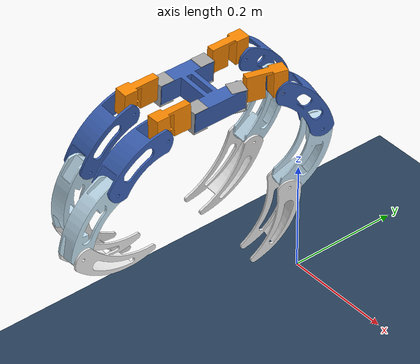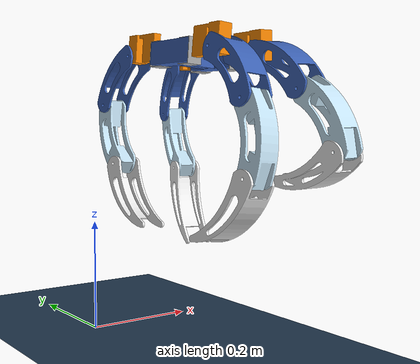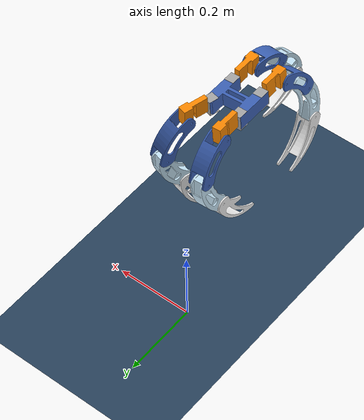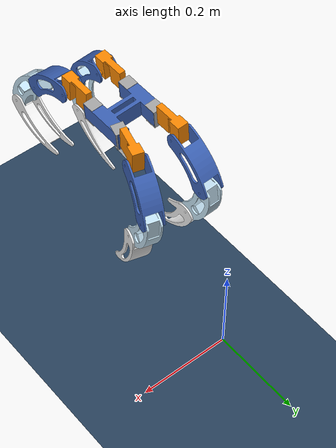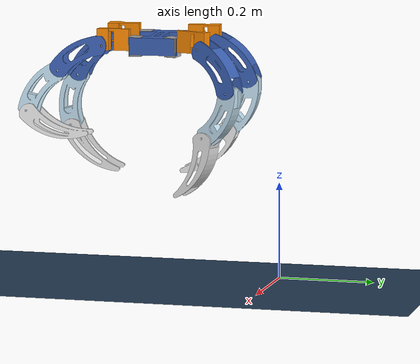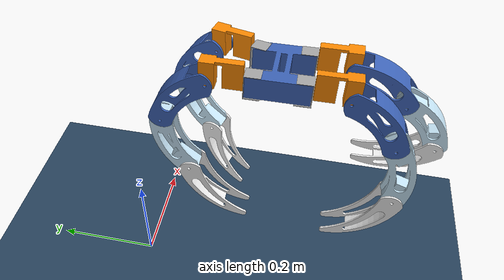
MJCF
<mujoco model="XiaoTianRobot">
  <option viscosity="0.1" integrator="RK4" timestep="0.001" gravity="0 0 -9.81" />
  <include file="mjmodel.xml" />

  <statistic center="0 0 0.3" extent="1.2" />

  <visual>
    <headlight diffuse="0.6 0.6 0.6" ambient="0.3 0.3 0.3" specular="0 0 0" />
    <rgba haze="0.15 0.25 0.35 1" />
    <global azimuth="120" elevation="-20" />
  </visual>

  <asset>
    <texture type="skybox" builtin="gradient" rgb1="0.3 0.5 0.7" rgb2="0 0 0" width="512"
      height="3072" />
    <texture type="2d" name="groundplane" builtin="checker" mark="edge" rgb1="0.2 0.3 0.4"
      rgb2="0.1 0.2 0.3" markrgb="0.8 0.8 0.8" width="300" height="300" />
    <material name="groundplane" texture="groundplane" texuniform="true" texrepeat="5 5"
      reflectance="0.2" />
  </asset>

  <worldbody>
    <light pos="0 0 1.5" dir="0 0 -1" directional="true" />
    <geom name="floor" size="0 0 0.05" type="plane" material="groundplane" />
  </worldbody>

</mujoco>

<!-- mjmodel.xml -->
<mujoco model="onshape">
  <compiler angle="radian" autolimits="true" />
  <size />
  <default />
  <asset>
    <mesh name="part_1" file="part_1.stl" />
    <mesh name="arm5" file="arm5.stl" />
    <mesh name="arm4" file="arm4.stl" />
    <mesh name="arm3" file="arm3.stl" />
    <mesh name="arm2" file="arm2.stl" />
    <mesh name="arm1" file="arm1.stl" />
  </asset>
  <worldbody>
    <body name="part_1" pos="0 0 0">
      <freejoint />
      <inertial pos="0.0499504 -0.243547 0.490316" quat="0 0.732218 0 0.68107" mass="1.4693" diaginertia="0.00314375 0.00226565 0.00119547" />
      <geom pos="0.0486492 -0.243547 0.472363" quat="0.999346 0 0.0361667 0" type="mesh" rgba="0.231373 0.380392 0.705882 1" mesh="part_1" />
      <body name="arm5" pos="0.0113562 -0.205451 0.51116" quat="0.0255749 0.706643 -0.706645 -0.025575">
        <inertial pos="-0.00577778 0 0.019" quat="0.707107 0 0 0.707107" mass="0.0156937" diaginertia="5.35559e-06 5.06341e-06 1.92694e-06" />
        <joint name="joint_1" pos="0 0 0" axis="0 0 1" range="-1.5708 0" />
        <geom pos="0.0455 0.0205 0.019" quat="0.707105 0.707108 0 0" type="mesh" rgba="0.647059 0.647059 0.647059 1" mesh="arm5" />
        <body name="arm4" pos="-0.0145 0 0.019" quat="9.38184e-07 -0.707105 -9.38187e-07 -0.707108">
          <inertial pos="-0.0130017 0 -0.0385551" quat="0.707079 -0.0062266 -0.0062266 0.707079" mass="0.304573" diaginertia="0.000182801 0.000140279 6.25312e-05" />
          <joint name="joint_14" pos="0 0 0" axis="0 0 1" range="-3.14159 0" />
          <geom pos="0 -0.0205 0.06" quat="0.499998 -0.5 -0.5 -0.500002" type="mesh" rgba="0.972549 0.529412 0.00392157 1" mesh="arm4" />
          <body name="arm3" pos="0 -0.0165 -0.055" quat="0.697691 -0.697693 -0.115005 -0.115005">
            <inertial pos="0.0164728 0.0533065 0.0165" quat="0.684885 0.684885 -0.175878 -0.175878" mass="0.253495" diaginertia="0.000453233 0.000429282 0.000133321" />
            <joint name="joint_13" pos="0 0 0" axis="0 0 1" range="0 1.5708" />
            <geom pos="0.115 0 -0.004" type="mesh" rgba="0.231373 0.380392 0.705882 1" mesh="arm3" />
            <body name="arm2" pos="0.0516066 0.0959494 0.001" quat="1.32033e-06 0.995124 -0.0986279 -1.30859e-07">
              <inertial pos="0.0535692 -0.0124398 -0.0155" quat="0.0319414 0.706385 -0.0319414 0.706385" mass="0.582673" diaginertia="0.00114357 0.00112104 0.000135036" />
              <joint name="joint_12" pos="0 0 0" axis="0 0 1" range="-1.0472 1.0472" />
              <geom pos="0.0633934 0.0959494 0.005" quat="1.32679e-06 -1 0 0" type="mesh" rgba="0.768627 0.886275 0.952941 1" mesh="arm2" />
              <body name="arm1" pos="0.108614 -0.0100944 0.001" quat="1.26743e-06 0.955259 -0.295771 -3.92427e-07">
                <inertial pos="0.0422881 -0.0309098 0.0165" quat="0.659314 0.659314 0.255547 0.255547" mass="0.226307" diaginertia="0.00045052 0.000421982 0.000104411" />
                <joint name="joint_11" pos="0 0 0" axis="0 0 1" range="-1.0472 1.0472" />
                <geom pos="-0.0452202 -0.106044 -0.004" type="mesh" rgba="0.917647 0.917647 0.917647 1" mesh="arm1" />
              </body>
            </body>
          </body>
        </body>
      </body>
      <body name="arm5_2" pos="0.0911469 -0.205451 0.505377" quat="0.0286831 0.608749 -0.792538 -0.0220317">
        <inertial pos="-0.00577778 0 0.019" quat="0.707107 0 0 0.707107" mass="0.0156937" diaginertia="5.35559e-06 5.06341e-06 1.92694e-06" />
        <joint name="joint_2" pos="0 0 0" axis="0 0 1" range="0 1.5708" />
        <geom pos="0.0455 -0.0205 0.019" quat="0.707105 -0.707108 0 0" type="mesh" rgba="0.647059 0.647059 0.647059 1" mesh="arm5" />
        <body name="arm4_2" pos="-0.0145 0 0.019" quat="0.0281563 -0.706546 0.0281614 -0.706546">
          <inertial pos="-0.0130017 0 -0.0385551" quat="0.707079 -0.0062266 -0.0062266 0.707079" mass="0.304573" diaginertia="0.000182801 0.000140279 6.25312e-05" />
          <joint name="joint_24" pos="0 0 0" axis="0 0 1" range="-3.14159 -0.0174533" />
          <geom pos="0 -0.0205 0.06" quat="0.499998 -0.5 -0.5 -0.500002" type="mesh" rgba="0.972549 0.529412 0.00392157 1" mesh="arm4" />
          <body name="arm3_2" pos="0 0.0165 -0.055" quat="0.692929 0.692932 -0.14088 0.140881">
            <inertial pos="0.0164728 -0.0533065 0.0165" quat="0.684885 0.684885 0.175878 0.175878" mass="0.253495" diaginertia="0.000453233 0.000429282 0.000133321" />
            <joint name="joint_23" pos="0 0 0" axis="0 0 1" range="-1.5708 0" />
            <geom pos="0.115 0 0.037" quat="1.32679e-06 1 0 0" type="mesh" rgba="0.231373 0.380392 0.705882 1" mesh="arm3" />
            <body name="arm2_2" pos="0.0516066 -0.0959494 0.001" quat="1.32027e-06 0.995086 0.0990185 1.31377e-07">
              <inertial pos="0.0535692 0.0124398 -0.0155" quat="-0.0319414 0.706385 0.0319414 0.706385" mass="0.582673" diaginertia="0.00114357 0.00112104 0.000135036" />
              <joint name="joint_22" pos="0 0 0" axis="0 0 1" range="-1.0472 1.0472" />
              <geom pos="0.0633934 -0.0959494 -0.036" type="mesh" rgba="0.768627 0.886275 0.952941 1" mesh="arm2" />
              <body name="arm1_2" pos="0.108614 0.0100944 0.001" quat="1.14906e-06 -0.866045 -0.499966 6.63353e-07">
                <inertial pos="0.0422881 0.0309098 0.0165" quat="0.659314 0.659314 -0.255547 -0.255547" mass="0.226307" diaginertia="0.00045052 0.000421982 0.000104411" />
                <joint name="joint_21" pos="0 0 0" axis="0 0 1" range="-1.0472 1.0472" />
                <geom pos="-0.0452202 0.106044 0.037" quat="1.32679e-06 1 0 0" type="mesh" rgba="0.917647 0.917647 0.917647 1" mesh="arm1" />
              </body>
            </body>
          </body>
        </body>
      </body>
      <body name="arm5_3" pos="0.0113562 -0.281642 0.51116" quat="0.0255749 -0.706643 -0.706645 0.025575">
        <inertial pos="-0.00577778 0 0.019" quat="0.707107 0 0 0.707107" mass="0.0156937" diaginertia="5.35559e-06 5.06341e-06 1.92694e-06" />
        <joint name="joint_3" pos="0 0 0" axis="0 0 1" range="0 1.5708" />
        <geom pos="0.0455 -0.0205 0.019" quat="0.707105 -0.707108 0 0" type="mesh" rgba="0.647059 0.647059 0.647059 1" mesh="arm5" />
        <body name="arm4_3" pos="-0.0145 0 0.019" quat="0.00771049 -0.707065 0.00771568 -0.707065">
          <inertial pos="-0.0130017 0 -0.0385551" quat="0.707079 -0.0062266 -0.0062266 0.707079" mass="0.304573" diaginertia="0.000182801 0.000140279 6.25312e-05" />
          <joint name="joint_34" pos="0 0 0" axis="0 0 1" range="-3.14159 0" />
          <geom pos="0 -0.0205 0.06" quat="0.499998 -0.5 -0.5 -0.500002" type="mesh" rgba="0.972549 0.529412 0.00392157 1" mesh="arm4" />
          <body name="arm3_3" pos="0 0.0165 -0.055" quat="0.700955 0.700958 -0.0930597 0.0930601">
            <inertial pos="0.0164728 -0.0533065 0.0165" quat="0.684885 0.684885 0.175878 0.175878" mass="0.253495" diaginertia="0.000453233 0.000429282 0.000133321" />
            <joint name="joint_33" pos="0 0 0" axis="0 0 1" range="-1.5708 0" />
            <geom pos="0.115 0 0.037" quat="1.32679e-06 -1 0 0" type="mesh" rgba="0.231373 0.380392 0.705882 1" mesh="arm3" />
            <body name="arm2_3" pos="0.0516066 -0.0959494 0.001" quat="1.3069e-06 0.985009 -0.172504 -2.28878e-07">
              <inertial pos="0.0535692 0.0124398 -0.0155" quat="-0.0319414 0.706385 0.0319414 0.706385" mass="0.582673" diaginertia="0.00114357 0.00112104 0.000135036" />
              <joint name="joint_32" pos="0 0 0" axis="0 0 1" range="-1.0472 1.0472" />
              <geom pos="0.0633934 -0.0959494 -0.036" type="mesh" rgba="0.768627 0.886275 0.952941 1" mesh="arm2" />
              <body name="arm1_3" pos="0.108614 0.0100944 0.001" quat="1.32678e-06 -0.999988 0.00496011 -6.58107e-09">
                <inertial pos="0.0422881 0.0309098 0.0165" quat="0.659314 0.659314 -0.255547 -0.255547" mass="0.226307" diaginertia="0.00045052 0.000421982 0.000104411" />
                <joint name="joint_31" pos="0 0 0" axis="0 0 1" range="-1.0472 1.0472" />
                <geom pos="-0.0452202 0.106044 0.037" quat="1.32679e-06 -1 0 0" type="mesh" rgba="0.917647 0.917647 0.917647 1" mesh="arm1" />
              </body>
            </body>
          </body>
        </body>
      </body>
      <body name="arm5_4" pos="0.0911469 -0.281642 0.505377" quat="0.0255749 -0.706643 -0.706645 0.025575">
        <inertial pos="-0.00577778 0 0.019" quat="0.707107 0 0 0.707107" mass="0.0156937" diaginertia="5.35559e-06 5.06341e-06 1.92694e-06" />
        <joint name="joint_4" pos="0 0 0" axis="0 0 1" range="-1.5708 0" />
        <geom pos="0.0455 -0.0205 0.019" quat="0.707105 -0.707108 0 0" type="mesh" rgba="0.647059 0.647059 0.647059 1" mesh="arm5" />
        <body name="arm4_4" pos="-0.0145 0 0.019" quat="0.0311058 0.706422 0.031111 0.706422">
          <inertial pos="-0.0130017 0 -0.0385551" quat="0.707079 -0.0062266 -0.0062266 0.707079" mass="0.304573" diaginertia="0.000182801 0.000140279 6.25312e-05" />
          <joint name="joint_44" pos="0 0 0" axis="0 0 1" range="0 3.14159" />
          <geom pos="0 -0.0205 0.06" quat="0.499998 -0.5 -0.5 -0.500002" type="mesh" rgba="0.972549 0.529412 0.00392157 1" mesh="arm4" />
          <body name="arm3_4" pos="0 0.0165 -0.055" quat="0.707066 0.707069 -0.00743738 0.0074374">
            <inertial pos="0.0164728 -0.0533065 0.0165" quat="0.684885 0.684885 0.175878 0.175878" mass="0.253495" diaginertia="0.000453233 0.000429282 0.000133321" />
            <joint name="joint_43" pos="0 0 0" axis="0 0 1" range="-1.5708 0" />
            <geom pos="0.115 0 0.037" quat="1.32679e-06 -1 0 0" type="mesh" rgba="0.231373 0.380392 0.705882 1" mesh="arm3" />
            <body name="arm2_4" pos="0.0516066 -0.0959494 0.001" quat="1.26661e-06 0.954642 -0.297757 -3.95063e-07">
              <inertial pos="0.0535692 0.0124398 -0.0155" quat="-0.0319414 0.706385 0.0319414 0.706385" mass="0.582673" diaginertia="0.00114357 0.00112104 0.000135036" />
              <joint name="joint_42" pos="0 0 0" axis="0 0 1" range="-1.0472 1.0472" />
              <geom pos="0.0633934 -0.0959494 -0.036" type="mesh" rgba="0.768627 0.886275 0.952941 1" mesh="arm2" />
              <body name="arm1_4" pos="0.108614 0.0100944 0.001" quat="1.18379e-06 -0.892218 0.451605 -5.99187e-07">
                <inertial pos="0.0422881 0.0309098 0.0165" quat="0.659314 0.659314 -0.255547 -0.255547" mass="0.226307" diaginertia="0.00045052 0.000421982 0.000104411" />
                <joint name="joint_41" pos="0 0 0" axis="0 0 1" range="-1.0472 1.0472" />
                <geom pos="-0.0452202 0.106044 0.037" quat="1.32679e-06 1 0 0" type="mesh" rgba="0.917647 0.917647 0.917647 1" mesh="arm1" />
              </body>
            </body>
          </body>
        </body>
      </body>
    </body>
  </worldbody>
  <actuator>
    <motor name="joint_1" gear="1" joint="joint_1" />
    <motor name="joint_2" gear="1" joint="joint_2" />
    <motor name="joint_3" gear="1" joint="joint_3" />
    <motor name="joint_4" gear="1" joint="joint_4" />
    <motor name="joint_11" gear="1" joint="joint_11" />
    <motor name="joint_12" gear="1" joint="joint_12" />
    <motor name="joint_13" gear="1" joint="joint_13" />
    <motor name="joint_14" gear="1" joint="joint_14" />
    <motor name="joint_21" gear="1" joint="joint_21" />
    <motor name="joint_22" gear="1" joint="joint_22" />
    <motor name="joint_23" gear="1" joint="joint_23" />
    <motor name="joint_24" gear="1" joint="joint_24" />
    <motor name="joint_31" gear="1" joint="joint_31" />
    <motor name="joint_32" gear="1" joint="joint_32" />
    <motor name="joint_33" gear="1" joint="joint_33" />
    <motor name="joint_34" gear="1" joint="joint_34" />
    <motor name="joint_41" gear="1" joint="joint_41" />
    <motor name="joint_42" gear="1" joint="joint_42" />
    <motor name="joint_43" gear="1" joint="joint_43" />
    <motor name="joint_44" gear="1" joint="joint_44" />
  </actuator>
</mujoco>
